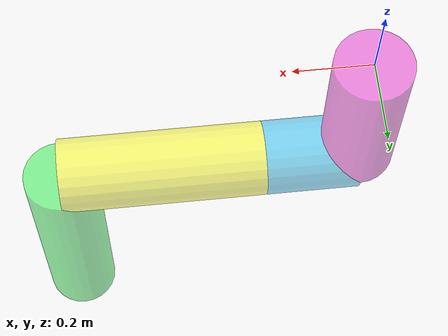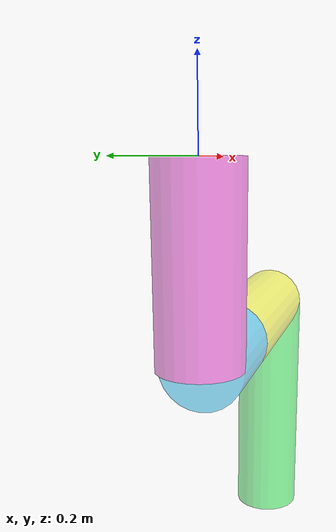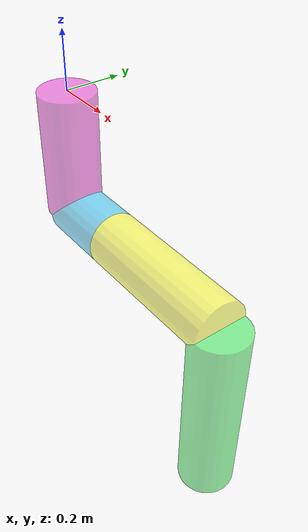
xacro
<?xml version="1.0"?>
<robot name="arm" xmlns:xacro="https://www.ros.org/wiki/xacro">
    <xacro:include filename="$(find arm)/urdf/ujang.description.xacro" />
    <xacro:include filename="$(find arm)/urdf/ujang.ros2_control.xacro" />

    <xacro:ujang_description />
    <xacro:ujang_ros2_control name="ujang_ros2_control" />
</robot>

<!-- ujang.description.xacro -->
<!-- Harusnya: 0,045; 0,025; 0,055; 0,07149 -->
 <!-- Kekecilan kubuat 0,45; 0,25; 0,55; 0,7149 -->

<robot xmlns:xacro="https://www.ros.org/wiki/xacro">
   <xacro:macro name="ujang_description" >

        <material name="pink">
            <color rgba="0.902 0.11 0.7921 0.5" />
        </material>

        <material name="hijau">
            <color rgba="0.067 0.922 0.208 0.5" />
        </material>

        <material name="kuning">
            <color rgba="1 1 0 0.5" />
        </material>

        <material name="biru">
            <color rgba="0.047 0.722 0.961 0.5" />
        </material>

        <!-- Link Area -->
        <link name="base_link">
            <visual>
                <origin xyz="0 0 -0.225" rpy="0 0 0" />
                <geometry>
                    <cylinder radius="0.1" length="0.45" />
                </geometry>
                <material name="pink"/>
            </visual>
        </link>

        <link name="coxa_link">
            <visual>
                <origin xyz="0.125 0 0" rpy="0 1.57079632679 0" />
                <geometry>
                    <cylinder radius="0.1" length="0.25" />
                </geometry>
                <material name="biru"/>
            </visual>
        </link>

        <link name="fermur_link">
            <visual>
                <origin xyz="0.275 0 0" rpy="0 1.57079632679 0" />
                <geometry>
                    <cylinder radius="0.1" length="0.55" />
                </geometry>
                <material name="kuning"/>
            </visual>
        </link>

        <link name="tibia_link">
            <visual>
                <origin xyz="0 0 -0.35745" rpy="0 0 0" />
                <geometry>
                    <cylinder radius="0.1" length="0.7149" />
                </geometry>
                <material name="hijau"/>
            </visual>
        </link>

        <link name="end_effector"/>

        <!-- Joint Area -->
        <joint name="joint_coxa" type="revolute">
            <parent link="base_link" />
            <child link="coxa_link" />
            <origin xyz="0 0 -0.45" rpy="0 0 0" />
            <axis xyz="0 0 1" />
        <limit effort="1000.0" lower="-1.57079632679" upper="1.57079632679" velocity="0.5"/>
        </joint>

        <joint name="joint_fermur" type="revolute">
            <parent link="coxa_link" />
            <child link="fermur_link" />
            <origin xyz="0.25 0 0" rpy="0 0 0" />
            <axis xyz="0 -1 0" />
        <limit effort="1000.0" lower="-1.57079632679" upper="1.57079632679" velocity="0.5"/>
        </joint>

        <joint name="joint_tibia" type="revolute">
            <parent link="fermur_link" />
            <child link="tibia_link" />
            <origin xyz="0.55 0 0" rpy="0 0 0" />
            <axis xyz="0 -1 0" />
        <limit effort="1000.0" lower="-1.57079632679" upper="1.57079632679" velocity="0.5"/>
        </joint>

        <joint name="joint_end_effector" type="fixed">
            <parent link="tibia_link" />
            <child link="end_effector" />
            <origin xyz="0 0 -0.7149" rpy="0 0 0" />
        </joint>
   </xacro:macro>
</robot>
